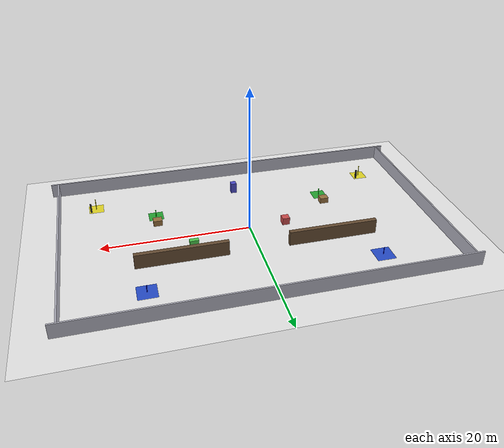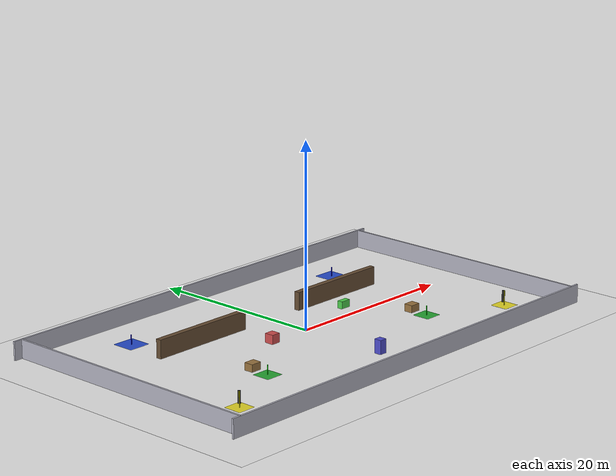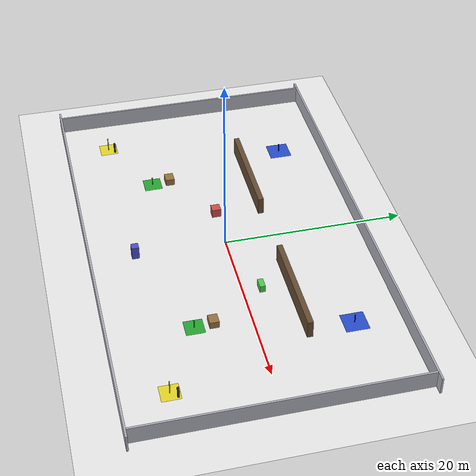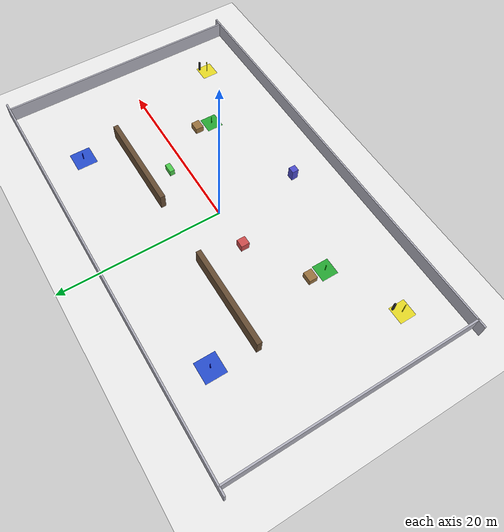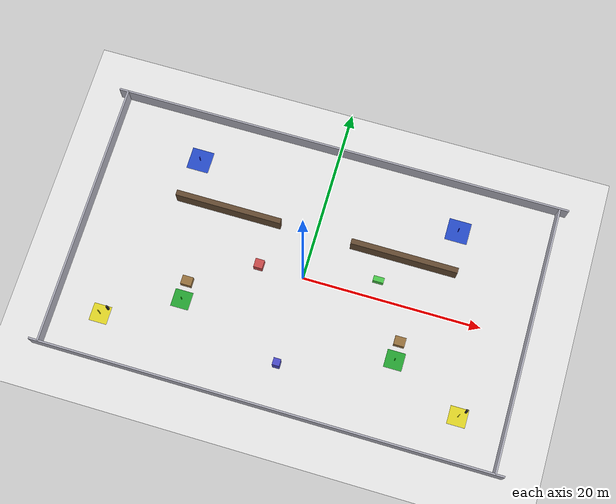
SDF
<?xml version="1.0" ?>
<sdf version="1.6">
  <world name="warehouse_world">
    <!-- ===== Physics & Scene ===== -->
    <physics name="default_physics" type="ode">
      <max_step_size>0.001</max_step_size>
      <real_time_update_rate>1000</real_time_update_rate>
      <real_time_factor>1.0</real_time_factor>
      <ode>
        <solver>
          <type>quick</type>
          <iters>50</iters>
          <sor>1.3</sor>
        </solver>
        <constraints>
          <cfm>0.0</cfm>
          <erp>0.2</erp>
          <contact_max_correcting_vel>100.0</contact_max_correcting_vel>
          <contact_surface_layer>0.001</contact_surface_layer>
        </constraints>
      </ode>
    </physics>

    <scene>
      <ambient>0.5 0.5 0.5 1</ambient>
      <shadows>true</shadows>
    </scene>

    <!-- ===== Sun & Ground ===== -->
    <include>
      <uri>model://sun</uri>
    </include>
    <include>
      <uri>model://ground_plane</uri>
    </include>

    <!-- Larger visual/physical floor -->
    <model name="floor_overlay">
      <static>true</static>
      <pose>0 0 0.01 0 0 0</pose>
      <link name="floor">
        <collision name="floor_collision">
          <geometry>
            <plane>
              <normal>0 0 1</normal>
              <size>60 40</size>
            </plane>
          </geometry>
          <surface>
            <friction>
              <ode>
                <mu>0.8</mu>
                <mu2>0.8</mu2>
              </ode>
            </friction>
          </surface>
        </collision>
        <visual name="floor_visual">
          <geometry>
            <plane>
              <normal>0 0 1</normal>
              <size>60 40</size>
            </plane>
          </geometry>
          <material>
            <ambient>0.92 0.92 0.92 1</ambient>
            <diffuse>0.92 0.92 0.92 1</diffuse>
          </material>
        </visual>
      </link>
    </model>

    <!-- ===== Perimeter Walls (50 x 30 m) ===== -->
    <model name="warehouse_bounds">
      <static>true</static>
      <pose>0 0 0 0 0 0</pose>

      <link name="north_wall">
        <pose>0 15 1 0 0 0</pose>
        <collision name="col"><geometry><box><size>52 0.2 2</size></box></geometry></collision>
        <visual name="vis">
          <geometry><box><size>52 0.2 2</size></box></geometry>
          <material><ambient>0.7 0.7 0.75 1</ambient></material>
        </visual>
      </link>

      <link name="south_wall">
        <pose>0 -15 1 0 0 0</pose>
        <collision name="col"><geometry><box><size>52 0.2 2</size></box></geometry></collision>
        <visual name="vis">
          <geometry><box><size>52 0.2 2</size></box></geometry>
          <material><ambient>0.7 0.7 0.75 1</ambient></material>
        </visual>
      </link>

      <link name="east_wall">
        <pose>25 0 1 0 0 0</pose>
        <collision name="col"><geometry><box><size>0.2 30 2</size></box></geometry></collision>
        <visual name="vis">
          <geometry><box><size>0.2 30 2</size></box></geometry>
          <material><ambient>0.7 0.7 0.75 1</ambient></material>
        </visual>
      </link>

      <link name="west_wall">
        <pose>-25 0 1 0 0 0</pose>
        <collision name="col"><geometry><box><size>0.2 30 2</size></box></geometry></collision>
        <visual name="vis">
          <geometry><box><size>0.2 30 2</size></box></geometry>
          <material><ambient>0.7 0.7 0.75 1</ambient></material>
        </visual>
      </link>
    </model>

    <!-- ===== Shelves (two rows) ===== -->
    <model name="shelf_row_1">
      <static>true</static>
      <pose>-10 5 1 0 0 0</pose>
      <link name="row">
        <collision name="col"><geometry><box><size>12 0.6 2</size></box></geometry></collision>
        <visual name="vis">
          <geometry><box><size>12 0.6 2</size></box></geometry>
          <material><ambient>0.4 0.3 0.2 1</ambient></material>
        </visual>
      </link>
    </model>

    <model name="shelf_row_2">
      <static>true</static>
      <pose>10 5 1 0 0 0</pose>
      <link name="row">
        <collision name="col"><geometry><box><size>12 0.6 2</size></box></geometry></collision>
        <visual name="vis">
          <geometry><box><size>12 0.6 2</size></box></geometry>
          <material><ambient>0.4 0.3 0.2 1</ambient></material>
        </visual>
      </link>
    </model>

    <!-- Pallet stacks near pickup zones -->
    <model name="pallet_stack_A">
      <static>true</static>
      <pose>-12 -4 0.4 0 0 0</pose>
      <link name="pallets">
        <collision name="col"><geometry><box><size>1.2 1.0 0.8</size></box></geometry></collision>
        <visual name="vis">
          <geometry><box><size>1.2 1.0 0.8</size></box></geometry>
          <material><ambient>0.6 0.45 0.25 1</ambient></material>
        </visual>
      </link>
    </model>

    <model name="pallet_stack_B">
      <static>true</static>
      <pose>12 -4 0.4 0 0 0</pose>
      <link name="pallets">
        <collision name="col"><geometry><box><size>1.2 1.0 0.8</size></box></geometry></collision>
        <visual name="vis">
          <geometry><box><size>1.2 1.0 0.8</size></box></geometry>
          <material><ambient>0.6 0.45 0.25 1</ambient></material>
        </visual>
      </link>
    </model>

    <!-- ===== Pickup & Drop-off pads ===== -->
    <!-- Pickup (green) — visual-only, no collision so AGVs can drive over freely -->
    <model name="pickup_zone_A">
      <static>true</static>
      <pose>-12 -6 0.005 0 0 0</pose>
      <link name="pad">
        <visual name="vis">
          <geometry><box><size>2 2 0.001</size></box></geometry>
          <material>
            <script>
              <uri>file://media/materials/scripts/gazebo.material</uri>
              <name>Gazebo/Green</name>
            </script>
          </material>
        </visual>
      </link>
    </model>

    <model name="pickup_zone_B">
      <static>true</static>
      <pose>12 -6 0.005 0 0 0</pose>
      <link name="pad">
        <visual name="vis">
          <geometry><box><size>2 2 0.001</size></box></geometry>
          <material>
            <script>
              <uri>file://media/materials/scripts/gazebo.material</uri>
              <name>Gazebo/Green</name>
            </script>
          </material>
        </visual>
      </link>
    </model>

    <!-- Drop-off (blue) — visual-only, no collision so AGVs can drive over freely -->
    <model name="dropoff_zone_A">
      <static>true</static>
      <pose>-15 10 0.005 0 0 0</pose>
      <link name="pad">
        <visual name="vis">
          <geometry><box><size>2.5 2.5 0.001</size></box></geometry>
          <material>
            <script>
              <uri>file://media/materials/scripts/gazebo.material</uri>
              <name>Gazebo/Blue</name>
            </script>
          </material>
        </visual>
      </link>
    </model>

    <model name="dropoff_zone_B">
      <static>true</static>
      <pose>15 10 0.005 0 0 0</pose>
      <link name="pad">
        <visual name="vis">
          <geometry><box><size>2.5 2.5 0.001</size></box></geometry>
          <material>
            <script>
              <uri>file://media/materials/scripts/gazebo.material</uri>
              <name>Gazebo/Blue</name>
            </script>
          </material>
        </visual>
      </link>
    </model>

    <!-- ===== Charging Stations (yellow pad + post + contact sensor) ===== -->
    <!-- Charging stations — pad is visual-only; docking detection uses odometry proximity -->
    <model name="charging_station_1">
      <static>true</static>
      <pose>-20 -10 0.005 0 0 0</pose>
      <link name="base">
        <visual name="pad_vis">
          <geometry><box><size>2 2 0.001</size></box></geometry>
          <material>
            <script>
              <uri>file://media/materials/scripts/gazebo.material</uri>
              <name>Gazebo/Yellow</name>
            </script>
          </material>
        </visual>
        <collision name="post_col">
          <pose>0.7 0.7 0.65 0 0 0</pose>
          <geometry><box><size>0.2 0.2 1.3</size></box></geometry>
        </collision>
        <visual name="post_vis">
          <pose>0.7 0.7 0.65 0 0 0</pose>
          <geometry><box><size>0.2 0.2 1.3</size></box></geometry>
          <material><ambient>0.2 0.2 0.2 1</ambient></material>
        </visual>
      </link>
    </model>

    <model name="charging_station_2">
      <static>true</static>
      <pose>20 -10 0.005 0 0 0</pose>
      <link name="base">
        <visual name="pad_vis">
          <geometry><box><size>2 2 0.001</size></box></geometry>
          <material>
            <script>
              <uri>file://media/materials/scripts/gazebo.material</uri>
              <name>Gazebo/Yellow</name>
            </script>
          </material>
        </visual>
        <collision name="post_col">
          <pose>0.7 0.7 0.65 0 0 0</pose>
          <geometry><box><size>0.2 0.2 1.3</size></box></geometry>
        </collision>
        <visual name="post_vis">
          <pose>0.7 0.7 0.65 0 0 0</pose>
          <geometry><box><size>0.2 0.2 1.3</size></box></geometry>
          <material><ambient>0.2 0.2 0.2 1</ambient></material>
        </visual>
      </link>
    </model>

    <!-- ===== Static Obstacles ===== -->
    <model name="static_obstacle_1">
      <static>true</static>
      <pose>-5 0 0.5 0 0 0</pose>
      <link name="box">
        <collision name="col"><geometry><box><size>1 1 1</size></box></geometry></collision>
        <visual name="vis">
          <geometry><box><size>1 1 1</size></box></geometry>
          <material><ambient>0.8 0.3 0.3 1</ambient></material>
        </visual>
      </link>
    </model>

    <model name="static_obstacle_2">
      <static>true</static>
      <pose>0 -10 0.75 0 0 0</pose>
      <link name="box">
        <collision name="col"><geometry><box><size>0.8 0.8 1.5</size></box></geometry></collision>
        <visual name="vis">
          <geometry><box><size>0.8 0.8 1.5</size></box></geometry>
          <material><ambient>0.3 0.3 0.8 1</ambient></material>
        </visual>
      </link>
    </model>

    <model name="static_obstacle_3">
      <static>true</static>
      <pose>8 2 0.4 0 0 0</pose>
      <link name="box">
        <collision name="col"><geometry><box><size>1.2 0.6 0.8</size></box></geometry></collision>
        <visual name="vis">
          <geometry><box><size>1.2 0.6 0.8</size></box></geometry>
          <material><ambient>0.3 0.8 0.3 1</ambient></material>
        </visual>
      </link>
    </model>

    <!-- ===== Visual markers (optional) ===== -->
    <model name="marker_pickup_A"><static>true</static><pose>-12 -6 0.5 0 0 0</pose>
      <link name="post"><visual name="vis"><geometry><cylinder><radius>0.05</radius><length>1.0</length></cylinder></geometry>
        <material><ambient>0.0 0.8 0.0 1</ambient></material></visual></link>
    </model>

    <model name="marker_pickup_B"><static>true</static><pose>12 -6 0.5 0 0 0</pose>
      <link name="post"><visual name="vis"><geometry><cylinder><radius>0.05</radius><length>1.0</length></cylinder></geometry>
        <material><ambient>0.0 0.8 0.0 1</ambient></material></visual></link>
    </model>

    <model name="marker_dropoff_A"><static>true</static><pose>-15 10 0.5 0 0 0</pose>
      <link name="post"><visual name="vis"><geometry><cylinder><radius>0.05</radius><length>1.0</length></cylinder></geometry>
        <material><ambient>0.0 0.0 0.8 1</ambient></material></visual></link>
    </model>

    <model name="marker_dropoff_B"><static>true</static><pose>15 10 0.5 0 0 0</pose>
      <link name="post"><visual name="vis"><geometry><cylinder><radius>0.05</radius><length>1.0</length></cylinder></geometry>
        <material><ambient>0.0 0.0 0.8 1</ambient></material></visual></link>
    </model>

    <model name="marker_charger_1"><static>true</static><pose>-20 -10 0.8 0 0 0</pose>
      <link name="post"><visual name="vis"><geometry><cylinder><radius>0.05</radius><length>1.6</length></cylinder></geometry>
        <material><ambient>0.8 0.8 0.0 1</ambient></material></visual></link>
    </model>

    <model name="marker_charger_2"><static>true</static><pose>20 -10 0.8 0 0 0</pose>
      <link name="post"><visual name="vis"><geometry><cylinder><radius>0.05</radius><length>1.6</length></cylinder></geometry>
        <material><ambient>0.8 0.8 0.0 1</ambient></material></visual></link>
    </model>
  </world>
</sdf>
